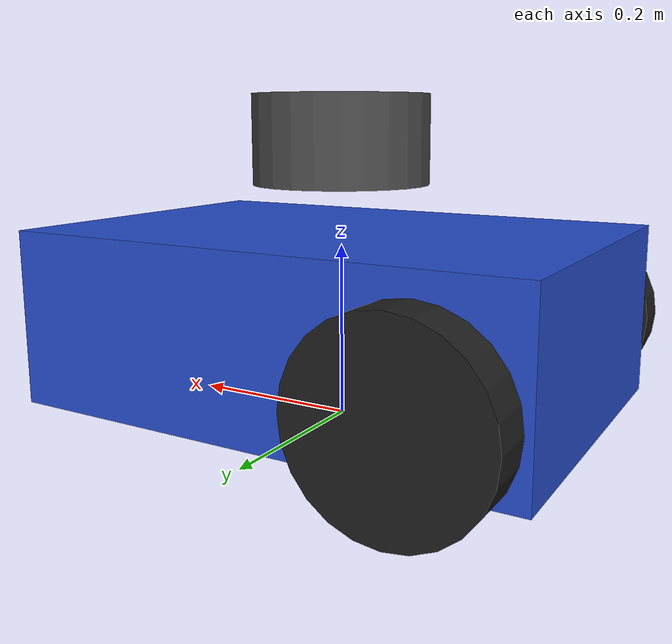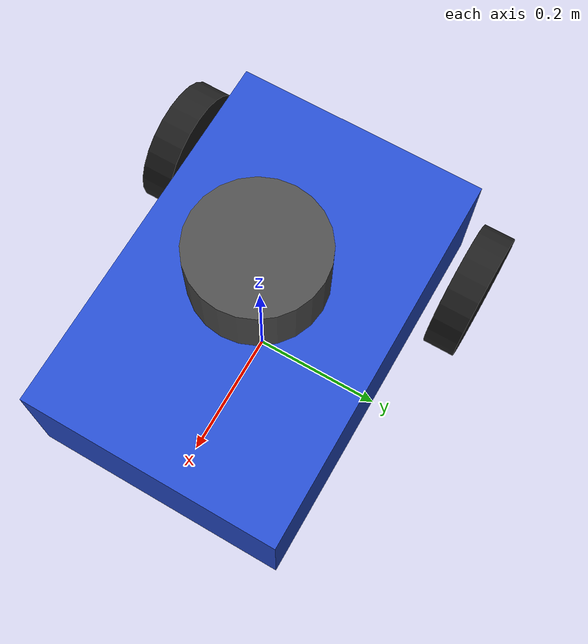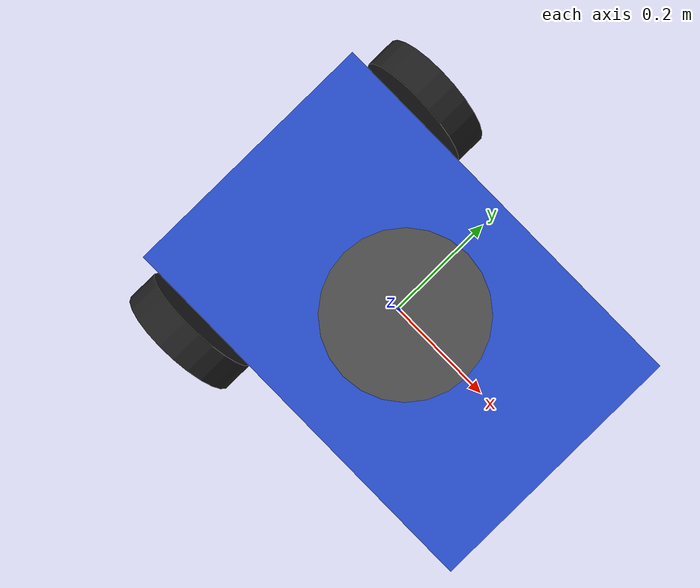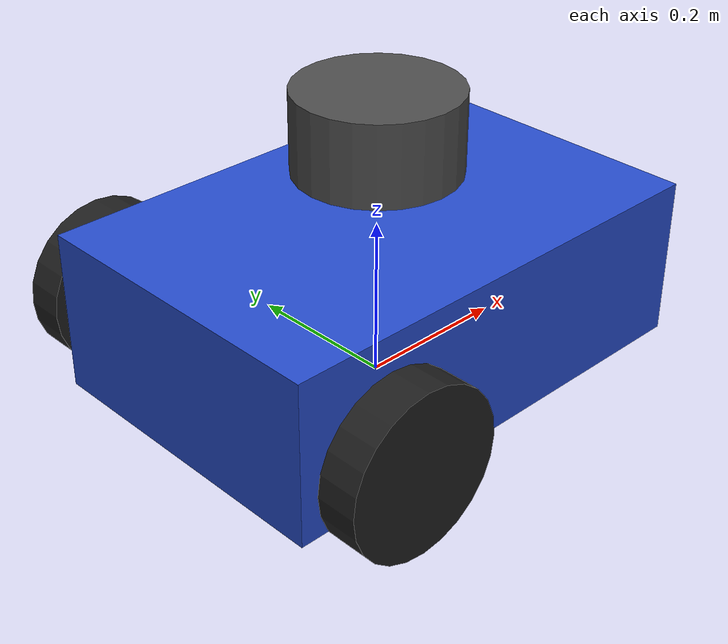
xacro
<?xml version="1.0"?>
<robot xmlns:xacro="http://ros.org/wiki/xacro" name="ugv_bot">

  <xacro:property name="PI" value="3.14159265359"/>

  <xacro:property name="a" value="0.6"/>
  <xacro:property name="b" value="0.4"/>
  <xacro:property name="c" value="0.2"/>
  <xacro:property name="r" value="0.1"/>
  <xacro:property name="d" value="0.05"/>
  <xacro:property name="s1" value="0.0"/>
  <xacro:property name="s2" value="0.2"/>
  <xacro:property name="s3" value="0.2"/>
  <xacro:property name="s4" value="0.25"/>
  <xacro:property name="d1" value="2700.0"/>
  <xacro:property name="d2" value="2700.0"/>
  <xacro:property name="d3" value="2700.0"/>

  <xacro:property name="m1" value="${d1 * a * b * c}"/>
  <xacro:property name="m2" value="${d2 * PI * r* r * d}"/>
  <xacro:property name="m3" value="${d3 * (4.0/3.0) * PI * r * r * r}"/>

  <xacro:property name="Ix_body" value="${(1/12)*m1*(b*b+c*c)}"/>
  <xacro:property name="Iy_body" value="${(1/12)*m1*(a*a+c*c)}"/>
  <xacro:property name="Iz_body" value="${(1/12)*m1*(a*a+b*b)}"/>

  <xacro:property name="Iz_wheel" value="${0.5*m2*r*r}"/>
  <xacro:property name="I_wheel" value="${(1.0/12.0)*m2*(3*r*r+d*d)}" />

  <xacro:property name="I_caster" value="${(2.0/5.0)*m3*r*r}" />

  <xacro:macro name="inertia_body">
    <inertial>
      <origin rpy="0 0 0" xyz="0 0 ${s1}" />
      <mass value="${m1}"/>
      <inertia ixx="${Ix_body}" ixy="0.0" ixz="0.0"
               iyy="${Iy_body}" iyz="0.0"
               izz="${Iz_body}"/>
    </inertial>
  </xacro:macro>

  <xacro:macro name="inertia_wheel" params="mass">
    <inertial>
      <origin rpy="1.570795 0 0" xyz="0 0 0"/>
      <mass value="${mass}"/>
      <inertia ixx="${I_wheel}" ixy="0.0" ixz="0.0"
               iyy="${I_wheel}" iyz="0.0"
               izz="${Iz_wheel}"/>
    </inertial>
  </xacro:macro>

  <xacro:macro name="inertia_caster" params="mass r">
    <inertial>
      <origin rpy="0 0 0" xyz="0 0 0"/>
      <mass value="${mass}"/>
      <inertia ixx="${I_caster}" ixy="0.0" ixz="0.0"
               iyy="${I_caster}" iyz="0.0"
               izz="${I_caster}"/>
    </inertial>
  </xacro:macro>

  <xacro:include filename="$(find ugv_bot)/model/robot.gazebo"/>

  <link name="base_footprint"/>

  <joint name="body_link_joint" type="fixed">
    <parent link="base_footprint"/>
    <child link="body_link"/>
    <origin xyz="0 0 ${r + 0.02}" rpy="0 0 0"/>
  </joint>

  <link name="body_link">
    <visual>
      <origin xyz="0 0 ${s1}" rpy="0 0 0"/>
      <geometry>
        <box size="${a} ${b} ${c}"/>
      </geometry>
    </visual>
    <collision>
      <origin xyz="0 0 ${s1}" rpy="0 0 0"/>
      <geometry>
        <box size="${a} ${b} ${c}"/>
      </geometry>
    </collision>
    <xacro:inertia_body />
  </link>

  <joint name="wheel_1_joint" type="continuous">
    <parent link="body_link"/>
    <child link="wheel_1_link"/>
    <origin xyz="-${s2} -${s4} -0.02" rpy="0 0 0"/>
    <axis xyz="0 1 0"/>
    <limit effort="50000" velocity="10"/>
    <dynamics damping="1.0" friction="1.0"/>
  </joint>

  <link name="wheel_1_link">
    <visual>
      <origin xyz="0 0 0" rpy="1.570795 0 0"/>
      <geometry>
        <cylinder length="${d}" radius="${r}"/>
      </geometry>
    </visual>
    <collision>
      <origin xyz="0 0 0" rpy="1.570795 0 0"/>
      <geometry>
        <cylinder length="${d}" radius="${r}"/>
      </geometry>
    </collision>
    <xacro:inertia_wheel mass="${m2}" />
  </link>

  <joint name="wheel_2_joint" type="continuous">
    <parent link="body_link"/>
    <child link="wheel_2_link"/>
    <origin xyz="-${s2} ${s4} -0.02" rpy="0 0 0"/>
    <axis xyz="0 1 0"/>
    <limit effort="50000" velocity="10"/>
    <dynamics damping="1.0" friction="1.0"/>
  </joint>

  <link name="wheel_2_link">
    <visual>
      <origin xyz="0 0 0" rpy="1.570795 0 0"/>
      <geometry>
        <cylinder length="${d}" radius="${r}"/>
      </geometry>
    </visual>
    <collision>
      <origin xyz="0 0 0" rpy="1.570795 0 0"/>
      <geometry>
        <cylinder length="${d}" radius="${r}"/>
      </geometry>
    </collision>
    <xacro:inertia_wheel mass="${m2}"/>
  </link>

  <joint name="caster_joint" type="fixed">
    <parent link="body_link"/>
    <child link="caster_link"/>
    <origin xyz="${s3} 0 -0.02" rpy="0 0 0"/>
  </joint>

  <link name="caster_link">
    <visual>
      <origin xyz="0 0 0" rpy="0 0 0"/>
      <geometry>
        <sphere radius="${r}"/>
      </geometry>
    </visual>
    <collision>
      <origin xyz="0 0 0" rpy="0 0 0"/>
      <geometry>
        <sphere radius="${r}"/>
      </geometry>
    </collision>
    <xacro:inertia_caster mass="${m3}" r="${r}"/>
  </link>

  <joint name="lidar_joint" type="fixed">
    <parent link="body_link"/>
    <child link="lidar_link"/>
    <origin xyz="0 0 ${c/2 + 0.05}" rpy="0 0 0"/>
    <axis xyz="0 1 0"/>
  </joint>

  <link name="lidar_link">
    <visual>
      <origin xyz="0 0 0.05" rpy="0 0 0"/>
      <geometry>
        <cylinder length="0.1" radius="0.1"/>
      </geometry>
    </visual>
    <collision>
      <origin xyz="0 0 0.05" rpy="0 0 0"/>
      <geometry>
        <cylinder length="0.1" radius="0.1"/>
      </geometry>
    </collision>
    <inertial>
      <mass value="0.1"/>
      <inertia ixx="0.001" ixy="0.0" ixz="0.0" iyy="0.001" iyz="0.0" izz="0.001"/>
    </inertial>
  </link>

</robot>
